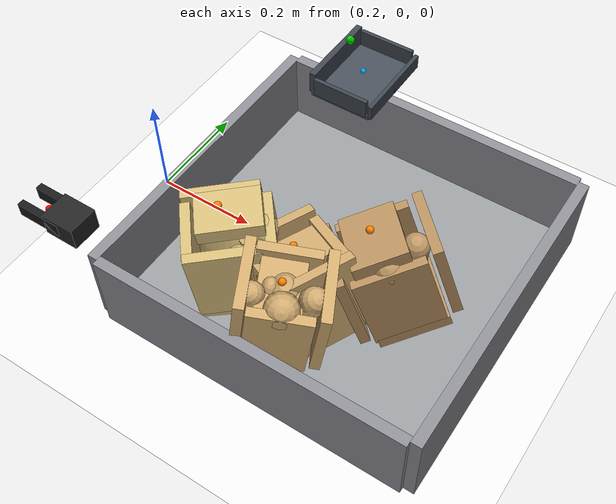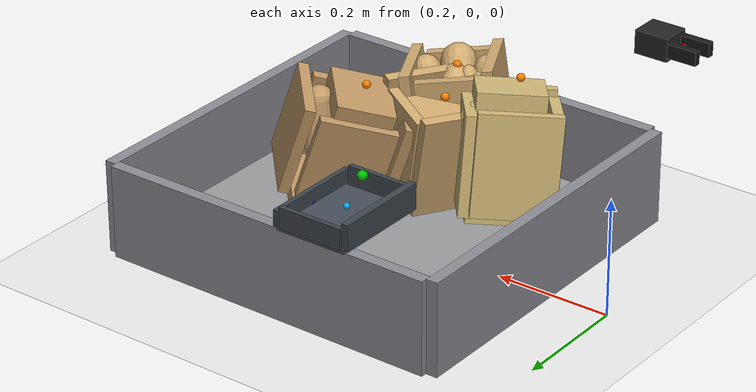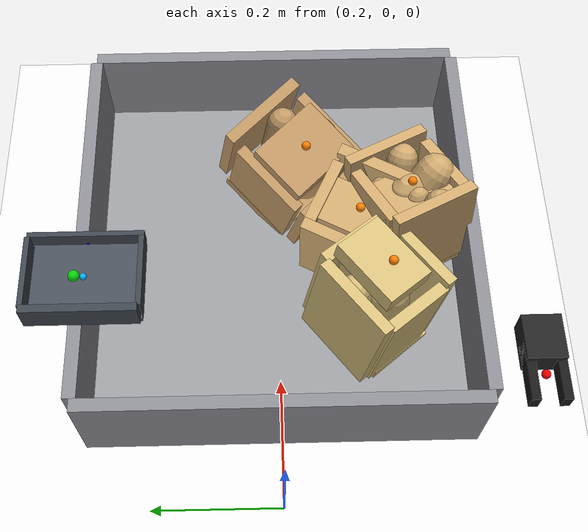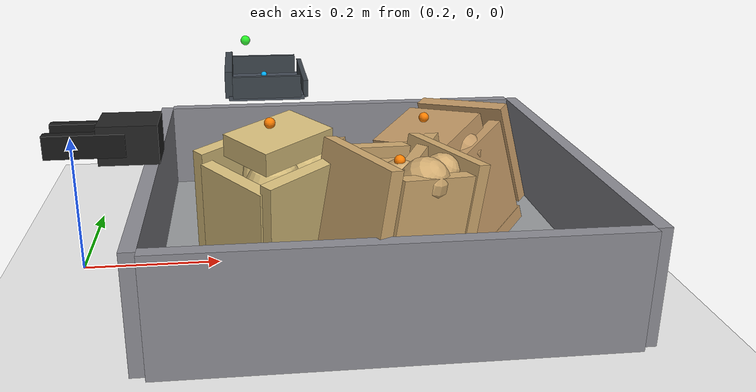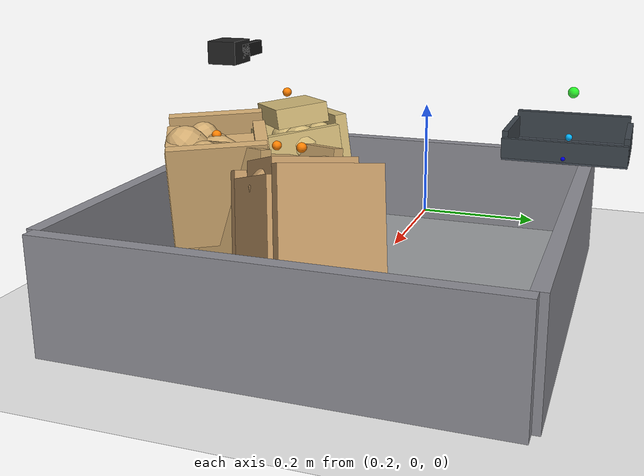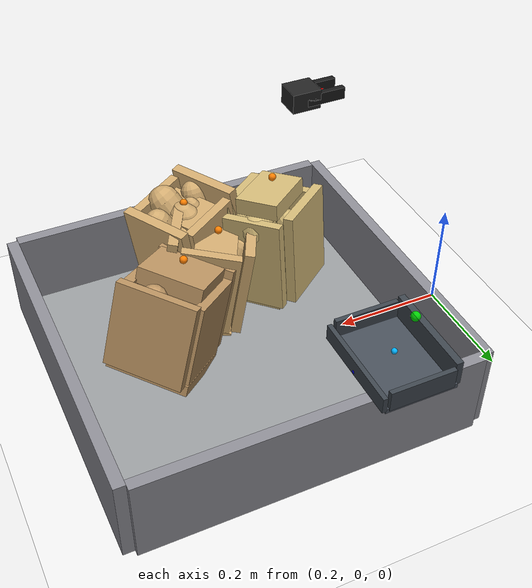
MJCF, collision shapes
<mujoco model="low_fill_top_collapsed_side_exposed_ep0_try0">
  <compiler angle="radian" coordinate="local" inertiafromgeom="true" meshdir="D:/Michael/2025/01.Research/01.Parceldetection/16.Pybullet/bullet3-master (1)/bullet3-master/examples/pybullet/examples/DeformableTest/Sackcodex2/object"/>
  <option timestep="0.002" gravity="0 0 -9.81" integrator="implicitfast" iterations="100" tolerance="1e-8"/>
  <size memory="768M" nconmax="12000"/>

  <visual>
    <global azimuth="128" elevation="-20"/>
    <headlight ambient="0.34 0.34 0.34" diffuse="0.78 0.78 0.78" specular="0.15 0.15 0.15"/>
    <rgba haze="0.11 0.13 0.18 1"/>
  </visual>

  <default>
    <geom condim="4" friction="1.15 0.03 0.01" margin="0.003" solimp="0.93 0.98 0.003" solref="0.012 1"/>
    <joint damping="1.2" armature="0.002"/>
    <position kp="2500" forcelimited="true" forcerange="-420 420"/>
    <motor ctrllimited="true"/>
  </default>

  <asset>
    <mesh name="sack_0_visual_mesh" file="sack.obj" scale="0.0729 0.0729 0.0746"/>
    <mesh name="sack_1_visual_mesh" file="sack3.obj" scale="0.0765 0.0765 0.0820"/>
    <mesh name="sack_2_visual_mesh" file="sack8.obj" scale="0.0745 0.0745 0.0806"/>
    <mesh name="sack_3_visual_mesh" file="sack10.obj" scale="0.0701 0.0701 0.0724"/>
  </asset>

  <worldbody>
    <light name="key" pos="0.85 0.15 1.8" dir="-0.2 -0.1 -1" directional="true"/>
    <geom name="floor" type="plane" size="2 2 0.1" rgba="0.93 0.93 0.93 1"/>
    <geom name="work_pad" type="box" pos="0.62 0 0.012" size="0.30 0.30 0.012" rgba="0.60 0.61 0.62 1" friction="1.4 0.05 0.01"/>
    <geom name="corral_front" type="box" pos="0.93 0.00 0.08" size="0.010 0.30 0.08" rgba="0.55 0.55 0.58 0.22" friction="1.0 0.03 0.01"/>
    <geom name="corral_back" type="box" pos="0.31 0.00 0.08" size="0.010 0.30 0.08" rgba="0.55 0.55 0.58 0.18" friction="1.0 0.03 0.01"/>
    <geom name="corral_left" type="box" pos="0.62 0.30 0.08" size="0.30 0.010 0.08" rgba="0.55 0.55 0.58 0.14" friction="1.0 0.03 0.01"/>
    <geom name="corral_right" type="box" pos="0.62 -0.30 0.08" size="0.30 0.010 0.08" rgba="0.55 0.55 0.58 0.14" friction="1.0 0.03 0.01"/>
    <camera name="overview" pos="1.22 0.00 0.92" xyaxes="0 1 0 -0.46 0 0.88"/>

    <body name="gripper_mocap" mocap="true" pos="0.36 -0.33 0.30" quat="0.707107 0 -0.707107 0"/>
    <body name="scoop_mocap" mocap="true" pos="0.42 0.28 0.20" quat="1 0 0 0"/>

    <body name="gripper_ctrl_base" pos="0.36 -0.33 0.30">
      <inertial pos="0 0 0" mass="0.001" diaginertia="1e-6 1e-6 1e-6"/>
      <joint name="gripper_ctrl_x" type="slide" axis="1 0 0" limited="true" range="0.20 1.00"/>
      <body name="gripper_ctrl_y_body">
        <inertial pos="0 0 0" mass="0.001" diaginertia="1e-6 1e-6 1e-6"/>
        <joint name="gripper_ctrl_y" type="slide" axis="0 1 0" limited="true" range="-0.60 0.60"/>
        <body name="gripper_ctrl_z_body">
          <inertial pos="0 0 0" mass="0.001" diaginertia="1e-6 1e-6 1e-6"/>
          <joint name="gripper_ctrl_z" type="slide" axis="0 0 1" limited="true" range="0.04 0.70"/>
          <body name="gripper_ctrl_yaw_body">
            <inertial pos="0 0 0" mass="0.001" diaginertia="1e-6 1e-6 1e-6"/>
            <joint name="gripper_ctrl_yaw" type="hinge" axis="0 0 1" limited="true" range="-3.1416 3.1416"/>
            <body name="gripper_ctrl_pitch_body">
              <inertial pos="0 0 0" mass="0.001" diaginertia="1e-6 1e-6 1e-6"/>
              <joint name="gripper_ctrl_pitch" type="hinge" axis="0 1 0" limited="true" range="-3.1416 3.1416"/>
              <body name="gripper_ctrl_roll_body">
                <inertial pos="0 0 0" mass="0.001" diaginertia="1e-6 1e-6 1e-6"/>
                <joint name="gripper_ctrl_roll" type="hinge" axis="1 0 0" limited="true" range="-3.1416 3.1416"/>
              </body>
            </body>
          </body>
        </body>
      </body>
    </body>

    <body name="scoop_ctrl_base" pos="0.42 0.28 0.20">
      <inertial pos="0 0 0" mass="0.001" diaginertia="1e-6 1e-6 1e-6"/>
      <joint name="scoop_ctrl_x" type="slide" axis="1 0 0" limited="true" range="0.20 1.00"/>
      <body name="scoop_ctrl_y_body">
        <inertial pos="0 0 0" mass="0.001" diaginertia="1e-6 1e-6 1e-6"/>
        <joint name="scoop_ctrl_y" type="slide" axis="0 1 0" limited="true" range="-0.60 0.60"/>
        <body name="scoop_ctrl_z_body">
          <inertial pos="0 0 0" mass="0.001" diaginertia="1e-6 1e-6 1e-6"/>
          <joint name="scoop_ctrl_z" type="slide" axis="0 0 1" limited="true" range="0.04 0.70"/>
          <body name="scoop_ctrl_yaw_body">
            <inertial pos="0 0 0" mass="0.001" diaginertia="1e-6 1e-6 1e-6"/>
            <joint name="scoop_ctrl_yaw" type="hinge" axis="0 0 1" limited="true" range="-3.1416 3.1416"/>
            <body name="scoop_ctrl_pitch_body">
              <inertial pos="0 0 0" mass="0.001" diaginertia="1e-6 1e-6 1e-6"/>
              <joint name="scoop_ctrl_pitch" type="hinge" axis="0 1 0" limited="true" range="-3.1416 3.1416"/>
              <body name="scoop_ctrl_roll_body">
                <inertial pos="0 0 0" mass="0.001" diaginertia="1e-6 1e-6 1e-6"/>
                <joint name="scoop_ctrl_roll" type="hinge" axis="1 0 0" limited="true" range="-3.1416 3.1416"/>
              </body>
            </body>
          </body>
        </body>
      </body>
    </body>

    <body name="gripper_tool" pos="0.36 -0.33 0.30" quat="0.707107 0 -0.707107 0">
      <freejoint name="gripper_tool_free"/>
      <inertial pos="0 0 0.04" mass="0.08" diaginertia="0.0002 0.0002 0.0002"/>
      <geom name="gripper_palm" type="box" pos="0 0 0.030" size="0.020 0.026 0.030" rgba="0.14 0.14 0.14 1"/>
      <body name="left_finger_body" pos="0 0 0.072">
        <joint name="left_finger_slide" type="slide" axis="0 1 0" limited="true" range="0.010 0.040" damping="12"/>
        <geom name="left_finger_geom" type="box" pos="0 0.020 0" size="0.012 0.006 0.040" rgba="0.10 0.10 0.10 1" friction="2.2 0.05 0.01"/>
      </body>
      <body name="right_finger_body" pos="0 0 0.072">
        <joint name="right_finger_slide" type="slide" axis="0 -1 0" limited="true" range="0.010 0.040" damping="12"/>
        <geom name="right_finger_geom" type="box" pos="0 -0.020 0" size="0.012 0.006 0.040" rgba="0.10 0.10 0.10 1" friction="2.2 0.05 0.01"/>
      </body>
      <site name="gripper_pinch_site" pos="0 0 0.074" size="0.006" rgba="1 0 0 1"/>
    </body>

    <body name="scoop_tool" pos="0.42 0.28 0.20" quat="1 0 0 0">
      <freejoint name="scoop_tool_free"/>
      <inertial pos="0 0 0.02" mass="0.10" diaginertia="0.0003 0.0003 0.0003"/>
      <geom name="scoop_plate" type="box" pos="0.062 0 0" size="0.062 0.085 0.004" rgba="0.28 0.31 0.35 1" friction="1.7 0.05 0.01"/>
      <geom name="scoop_lip" type="box" pos="0.126 0 0.014" size="0.004 0.085 0.014" rgba="0.24 0.27 0.30 1" friction="1.7 0.05 0.01"/>
      <geom name="scoop_left_rail" type="box" pos="0.062 0.082 0.018" size="0.056 0.004 0.018" rgba="0.24 0.27 0.30 1"/>
      <geom name="scoop_right_rail" type="box" pos="0.062 -0.082 0.018" size="0.056 0.004 0.018" rgba="0.24 0.27 0.30 1"/>
      <geom name="scoop_backstop" type="box" pos="0.000 0 0.022" size="0.006 0.082 0.022" rgba="0.24 0.27 0.30 1"/>
      <site name="scoop_tip_site" pos="0.126 0 0.005" size="0.005" rgba="0 0 1 1"/>
      <site name="scoop_center_site" pos="0.060 0 0.020" size="0.005" rgba="0 0.7 1 1"/>
      <site name="score_overlay_site" pos="0.030 0 0.080" size="0.008" rgba="0 1 0 0.8"/>
    </body>

    <body name="sack_0" pos="0.6172 -0.1280 0.1110" euler="-0.0194 -0.1628 -2.0436">
      <freejoint name="sack_0_free"/>

      <geom name="sack_0_visual" type="mesh" mesh="sack_0_visual_mesh" rgba="0.820 0.670 0.440 0.92" contype="0" conaffinity="0"/>
      <site name="sack_0_center_site" pos="0 0 0.000" size="0.006" rgba="0 1 0 1"/>
      <site name="sack_0_top_site" pos="0 -0.0060 0.0951" size="0.007" rgba="1 0.5 0 1"/>
      <site name="sack_0_side_site" pos="0.0000 -0.0476 0.018" size="0.007" rgba="1 0.8 0 1"/>

      <geom name="sack_0_core_geom" type="ellipsoid" pos="0 0 0.0055" size="0.0450 0.0348 0.0666" mass="0.6235" rgba="0.820 0.670 0.440 0.12" friction="1.0 0.03 0.01"/>
      <geom name="sack_0_core_front" type="capsule" fromto="-0.0200 0 -0.0200 0.0450 0 0.0600" size="0.0294" mass="0.1484" rgba="0.820 0.670 0.440 0.10"/>
      <geom name="sack_0_core_left" type="capsule" fromto="-0.008 0.0315 -0.010 0.018 0.0495 0.060" size="0.0241" mass="0.2672" rgba="0.820 0.670 0.440 0.10"/>
      <geom name="sack_0_core_right" type="capsule" fromto="-0.006 -0.0315 -0.008 0.020 -0.0515 0.054" size="0.0221" mass="0.2672" rgba="0.820 0.670 0.440 0.10"/>

      <body name="sack_0_bottom_support_proxy_body" pos="0 -0.0042 -0.0895">
        <joint name="sack_0_bottom_x" type="slide" axis="1 0 0" limited="true" range="-0.012 0.012" damping="18" stiffness="443.3"/>
        <joint name="sack_0_bottom_y" type="slide" axis="0 1 0" limited="true" range="-0.012 0.012" damping="18" stiffness="443.3"/>
        <joint name="sack_0_bottom_z" type="slide" axis="0 0 1" limited="true" range="-0.008 0.020" damping="24" stiffness="546.3"/>
        <geom name="sack_0_bottom_support_proxy" type="box" size="0.0724 0.0536 0.0100" mass="0.1188" rgba="0.820 0.670 0.440 0.34" friction="1.55 0.05 0.01"/>
      </body>

      <body name="sack_0_top_grasp_proxy_body" pos="0.0000 -0.0060 0.0651">
        <joint name="sack_0_top_x" type="slide" axis="1 0 0" limited="true" range="-0.018 0.018" damping="12" stiffness="170.2"/>
        <joint name="sack_0_top_y" type="slide" axis="0 1 0" limited="true" range="-0.018 0.018" damping="12" stiffness="170.2"/>
        <joint name="sack_0_top_z" type="slide" axis="0 0 1" limited="true" range="-0.040 0.010" damping="14" stiffness="124.4"/>
        <geom name="sack_0_top_grasp_proxy" type="box" size="0.0564 0.0376 0.0150" mass="0.0891" rgba="0.820 0.670 0.440 0.26" friction="2.2 0.05 0.01"/>
      </body>

      <body name="sack_0_left_side_proxy_body" pos="0 0.0691 0.010">
        <joint name="sack_0_left_side_slide" type="slide" axis="0 -1 0" limited="true" range="-0.028 0.016" damping="16" stiffness="217.3"/>
        <geom name="sack_0_left_side_proxy" type="box" size="0.0684 0.0090 0.0875" mass="0.0891" rgba="0.820 0.670 0.440 0.24"/>
      </body>

      <body name="sack_0_right_side_proxy_body" pos="0 -0.0651 0.010">
        <joint name="sack_0_right_side_slide" type="slide" axis="0 1 0" limited="true" range="-0.028 0.016" damping="16" stiffness="201.6"/>
        <geom name="sack_0_right_side_proxy" type="box" size="0.0684 0.0090 0.0875" mass="0.0891" rgba="0.820 0.670 0.440 0.24"/>
      </body>

      <body name="sack_0_front_proxy_body" pos="0.0624 0 0.000">
        <joint name="sack_0_front_slide" type="slide" axis="-1 0 0" limited="true" range="-0.022 0.012" damping="15" stiffness="211.7"/>
        <geom name="sack_0_front_support_proxy" type="box" size="0.0090 0.0536 0.0855" mass="0.0742" rgba="0.820 0.670 0.440 0.22"/>
      </body>

      <body name="sack_0_back_proxy_body" pos="-0.0624 0 0.000">
        <joint name="sack_0_back_slide" type="slide" axis="1 0 0" limited="true" range="-0.022 0.012" damping="15" stiffness="195.9"/>
        <geom name="sack_0_back_support_proxy" type="box" size="0.0090 0.0536 0.0855" mass="0.0742" rgba="0.820 0.670 0.440 0.22"/>
      </body>

      <body name="sack_0_shape_proxy_body" pos="0.0000 -0.0235 0.0456">
        <joint name="sack_0_bulge_y" type="slide" axis="0 1 0" limited="true" range="-0.020 0.020" damping="8" stiffness="111.1"/>
        <joint name="sack_0_bulge_z" type="slide" axis="0 0 1" limited="true" range="-0.014 0.028" damping="8" stiffness="108.3"/>
        <geom name="sack_0_shape_proxy" type="ellipsoid" size="0.0201 0.0162 0.0264" mass="0.0594" rgba="0.820 0.670 0.440 0.28"/>
      </body>
    </body>

    <body name="sack_1" pos="0.7292 -0.0272 0.1213" euler="0.1234 -0.2846 -0.7848">
      <freejoint name="sack_1_free"/>

      <geom name="sack_1_visual" type="mesh" mesh="sack_1_visual_mesh" rgba="0.760 0.600 0.400 0.92" contype="0" conaffinity="0"/>
      <site name="sack_1_center_site" pos="0 0 0.000" size="0.006" rgba="0 1 0 1"/>
      <site name="sack_1_top_site" pos="0 -0.0060 0.1146" size="0.007" rgba="1 0.5 0 1"/>
      <site name="sack_1_side_site" pos="0.0000 -0.0587 0.018" size="0.007" rgba="1 0.8 0 1"/>

      <geom name="sack_1_core_geom" type="ellipsoid" pos="0 0 0.0058" size="0.0452 0.0356 0.0797" mass="0.8257" rgba="0.760 0.600 0.400 0.12" friction="1.0 0.03 0.01"/>
      <geom name="sack_1_core_front" type="capsule" fromto="-0.0200 0 -0.0200 0.0450 0 0.0600" size="0.0310" mass="0.1966" rgba="0.760 0.600 0.400 0.10"/>
      <geom name="sack_1_core_left" type="capsule" fromto="-0.008 0.0361 -0.010 0.018 0.0541 0.060" size="0.0242" mass="0.3539" rgba="0.760 0.600 0.400 0.10"/>
      <geom name="sack_1_core_right" type="capsule" fromto="-0.006 -0.0361 -0.008 0.020 -0.0561 0.054" size="0.0222" mass="0.3539" rgba="0.760 0.600 0.400 0.10"/>

      <body name="sack_1_bottom_support_proxy_body" pos="0 0.0044 -0.0804">
        <joint name="sack_1_bottom_x" type="slide" axis="1 0 0" limited="true" range="-0.012 0.012" damping="18" stiffness="490.9"/>
        <joint name="sack_1_bottom_y" type="slide" axis="0 1 0" limited="true" range="-0.012 0.012" damping="18" stiffness="490.9"/>
        <joint name="sack_1_bottom_z" type="slide" axis="0 0 1" limited="true" range="-0.008 0.020" damping="24" stiffness="604.5"/>
        <geom name="sack_1_bottom_support_proxy" type="box" size="0.0760 0.0647 0.0100" mass="0.1573" rgba="0.760 0.600 0.400 0.34" friction="1.55 0.05 0.01"/>
      </body>

      <body name="sack_1_top_grasp_proxy_body" pos="0.0000 -0.0060 0.0846">
        <joint name="sack_1_top_x" type="slide" axis="1 0 0" limited="true" range="-0.018 0.018" damping="12" stiffness="188.7"/>
        <joint name="sack_1_top_y" type="slide" axis="0 1 0" limited="true" range="-0.018 0.018" damping="12" stiffness="188.7"/>
        <joint name="sack_1_top_z" type="slide" axis="0 0 1" limited="true" range="-0.040 0.010" damping="14" stiffness="140.3"/>
        <geom name="sack_1_top_grasp_proxy" type="box" size="0.0600 0.0487 0.0150" mass="0.1180" rgba="0.760 0.600 0.400 0.26" friction="2.2 0.05 0.01"/>
      </body>

      <body name="sack_1_left_side_proxy_body" pos="0 0.0847 0.010">
        <joint name="sack_1_left_side_slide" type="slide" axis="0 -1 0" limited="true" range="-0.028 0.016" damping="16" stiffness="250.0"/>
        <geom name="sack_1_left_side_proxy" type="box" size="0.0720 0.0090 0.0784" mass="0.1180" rgba="0.760 0.600 0.400 0.24"/>
      </body>

      <body name="sack_1_right_side_proxy_body" pos="0 -0.0807 0.010">
        <joint name="sack_1_right_side_slide" type="slide" axis="0 1 0" limited="true" range="-0.028 0.016" damping="16" stiffness="231.7"/>
        <geom name="sack_1_right_side_proxy" type="box" size="0.0720 0.0090 0.0784" mass="0.1180" rgba="0.760 0.600 0.400 0.24"/>
      </body>

      <body name="sack_1_front_proxy_body" pos="0.0660 0 0.000">
        <joint name="sack_1_front_slide" type="slide" axis="-1 0 0" limited="true" range="-0.022 0.012" damping="15" stiffness="235.5"/>
        <geom name="sack_1_front_support_proxy" type="box" size="0.0090 0.0647 0.0764" mass="0.0983" rgba="0.760 0.600 0.400 0.22"/>
      </body>

      <body name="sack_1_back_proxy_body" pos="-0.0660 0 0.000">
        <joint name="sack_1_back_slide" type="slide" axis="1 0 0" limited="true" range="-0.022 0.012" damping="15" stiffness="217.1"/>
        <geom name="sack_1_back_support_proxy" type="box" size="0.0090 0.0647 0.0764" mass="0.0983" rgba="0.760 0.600 0.400 0.22"/>
      </body>

      <body name="sack_1_shape_proxy_body" pos="0.0000 -0.0281 0.0297">
        <joint name="sack_1_bulge_y" type="slide" axis="0 1 0" limited="true" range="-0.020 0.020" damping="8" stiffness="79.4"/>
        <joint name="sack_1_bulge_z" type="slide" axis="0 0 1" limited="true" range="-0.014 0.028" damping="8" stiffness="84.5"/>
        <geom name="sack_1_shape_proxy" type="ellipsoid" size="0.0202 0.0163 0.0261" mass="0.0786" rgba="0.760 0.600 0.400 0.28"/>
      </body>
    </body>

    <body name="sack_2" pos="0.4783 -0.1446 0.1244" euler="0.1291 0.0033 0.6855">
      <freejoint name="sack_2_free"/>

      <geom name="sack_2_visual" type="mesh" mesh="sack_2_visual_mesh" rgba="0.840 0.740 0.480 0.92" contype="0" conaffinity="0"/>
      <site name="sack_2_center_site" pos="0 0 0.000" size="0.006" rgba="0 1 0 1"/>
      <site name="sack_2_top_site" pos="0 0.0060 0.1366" size="0.007" rgba="1 0.5 0 1"/>
      <site name="sack_2_side_site" pos="0.0140 0.0501 0.018" size="0.007" rgba="1 0.8 0 1"/>

      <geom name="sack_2_core_geom" type="ellipsoid" pos="0 0 0.0060" size="0.0505 0.0424 0.0899" mass="1.0672" rgba="0.840 0.740 0.480 0.12" friction="1.0 0.03 0.01"/>
      <geom name="sack_2_core_front" type="capsule" fromto="-0.0060 0 -0.0200 0.0590 0 0.0600" size="0.0314" mass="0.2541" rgba="0.840 0.740 0.480 0.10"/>
      <geom name="sack_2_core_left" type="capsule" fromto="-0.008 0.0259 -0.010 0.018 0.0439 0.060" size="0.0241" mass="0.4574" rgba="0.840 0.740 0.480 0.10"/>
      <geom name="sack_2_core_right" type="capsule" fromto="-0.006 -0.0259 -0.008 0.020 -0.0459 0.054" size="0.0221" mass="0.4574" rgba="0.840 0.740 0.480 0.10"/>

      <body name="sack_2_bottom_support_proxy_body" pos="0 -0.0128 -0.0897">
        <joint name="sack_2_bottom_x" type="slide" axis="1 0 0" limited="true" range="-0.012 0.012" damping="18" stiffness="501.9"/>
        <joint name="sack_2_bottom_y" type="slide" axis="0 1 0" limited="true" range="-0.012 0.012" damping="18" stiffness="501.9"/>
        <joint name="sack_2_bottom_z" type="slide" axis="0 0 1" limited="true" range="-0.008 0.020" damping="24" stiffness="617.9"/>
        <geom name="sack_2_bottom_support_proxy" type="box" size="0.0722 0.0561 0.0100" mass="0.2033" rgba="0.840 0.740 0.480 0.34" friction="1.55 0.05 0.01"/>
      </body>

      <body name="sack_2_top_grasp_proxy_body" pos="0.0140 0.0060 0.1066">
        <joint name="sack_2_top_x" type="slide" axis="1 0 0" limited="true" range="-0.018 0.018" damping="12" stiffness="193.0"/>
        <joint name="sack_2_top_y" type="slide" axis="0 1 0" limited="true" range="-0.018 0.018" damping="12" stiffness="193.0"/>
        <joint name="sack_2_top_z" type="slide" axis="0 0 1" limited="true" range="-0.040 0.010" damping="14" stiffness="144.0"/>
        <geom name="sack_2_top_grasp_proxy" type="box" size="0.0562 0.0401 0.0150" mass="0.1525" rgba="0.840 0.740 0.480 0.26" friction="2.2 0.05 0.01"/>
      </body>

      <body name="sack_2_left_side_proxy_body" pos="0 0.0660 0.010">
        <joint name="sack_2_left_side_slide" type="slide" axis="0 -1 0" limited="true" range="-0.028 0.016" damping="16" stiffness="257.9"/>
        <geom name="sack_2_left_side_proxy" type="box" size="0.0682 0.0090 0.0877" mass="0.1525" rgba="0.840 0.740 0.480 0.24"/>
      </body>

      <body name="sack_2_right_side_proxy_body" pos="0 -0.0620 0.010">
        <joint name="sack_2_right_side_slide" type="slide" axis="0 1 0" limited="true" range="-0.028 0.016" damping="16" stiffness="238.9"/>
        <geom name="sack_2_right_side_proxy" type="box" size="0.0682 0.0090 0.0877" mass="0.1525" rgba="0.840 0.740 0.480 0.24"/>
      </body>

      <body name="sack_2_front_proxy_body" pos="0.0762 0 0.000">
        <joint name="sack_2_front_slide" type="slide" axis="-1 0 0" limited="true" range="-0.022 0.012" damping="15" stiffness="241.0"/>
        <geom name="sack_2_front_support_proxy" type="box" size="0.0090 0.0561 0.0857" mass="0.1271" rgba="0.840 0.740 0.480 0.22"/>
      </body>

      <body name="sack_2_back_proxy_body" pos="-0.0622 0 0.000">
        <joint name="sack_2_back_slide" type="slide" axis="1 0 0" limited="true" range="-0.022 0.012" damping="15" stiffness="222.0"/>
        <geom name="sack_2_back_support_proxy" type="box" size="0.0090 0.0561 0.0857" mass="0.1271" rgba="0.840 0.740 0.480 0.22"/>
      </body>

      <body name="sack_2_shape_proxy_body" pos="0.0084 0.0179 0.0260">
        <joint name="sack_2_bulge_y" type="slide" axis="0 1 0" limited="true" range="-0.020 0.020" damping="8" stiffness="72.1"/>
        <joint name="sack_2_bulge_z" type="slide" axis="0 0 1" limited="true" range="-0.014 0.028" damping="8" stiffness="79.0"/>
        <geom name="sack_2_shape_proxy" type="ellipsoid" size="0.0201 0.0161 0.0260" mass="0.1016" rgba="0.840 0.740 0.480 0.28"/>
      </body>
    </body>

    <body name="sack_3" pos="0.6254 -0.2022 0.1495" euler="-0.0336 0.1425 -1.0885">
      <freejoint name="sack_3_free"/>

      <geom name="sack_3_visual" type="mesh" mesh="sack_3_visual_mesh" rgba="0.820 0.670 0.440 0.92" contype="0" conaffinity="0"/>
      <site name="sack_3_center_site" pos="0 0 0.000" size="0.006" rgba="0 1 0 1"/>
      <site name="sack_3_top_site" pos="0 -0.0060 0.0717" size="0.007" rgba="1 0.5 0 1"/>
      <site name="sack_3_side_site" pos="0.0000 -0.0484 0.018" size="0.007" rgba="1 0.8 0 1"/>

      <geom name="sack_3_core_geom" type="ellipsoid" pos="0 0 0.0055" size="0.0452 0.0352 0.0672" mass="0.6721" rgba="0.820 0.670 0.440 0.12" friction="1.0 0.03 0.01"/>
      <geom name="sack_3_core_front" type="capsule" fromto="-0.0200 0 -0.0200 0.0450 0 0.0600" size="0.0298" mass="0.1600" rgba="0.820 0.670 0.440 0.10"/>
      <geom name="sack_3_core_left" type="capsule" fromto="-0.008 0.0309 -0.010 0.018 0.0489 0.060" size="0.0241" mass="0.2880" rgba="0.820 0.670 0.440 0.10"/>
      <geom name="sack_3_core_right" type="capsule" fromto="-0.006 -0.0309 -0.008 0.020 -0.0509 0.054" size="0.0221" mass="0.2880" rgba="0.820 0.670 0.440 0.10"/>

      <body name="sack_3_bottom_support_proxy_body" pos="0 -0.0124 -0.0761">
        <joint name="sack_3_bottom_x" type="slide" axis="1 0 0" limited="true" range="-0.012 0.012" damping="18" stiffness="452.8"/>
        <joint name="sack_3_bottom_y" type="slide" axis="0 1 0" limited="true" range="-0.012 0.012" damping="18" stiffness="452.8"/>
        <joint name="sack_3_bottom_z" type="slide" axis="0 0 1" limited="true" range="-0.008 0.020" damping="24" stiffness="557.9"/>
        <geom name="sack_3_bottom_support_proxy" type="box" size="0.0727 0.0544 0.0100" mass="0.1280" rgba="0.820 0.670 0.440 0.34" friction="1.55 0.05 0.01"/>
      </body>

      <body name="sack_3_top_grasp_proxy_body" pos="0.0000 -0.0060 0.0417">
        <joint name="sack_3_top_x" type="slide" axis="1 0 0" limited="true" range="-0.018 0.018" damping="12" stiffness="173.9"/>
        <joint name="sack_3_top_y" type="slide" axis="0 1 0" limited="true" range="-0.018 0.018" damping="12" stiffness="173.9"/>
        <joint name="sack_3_top_z" type="slide" axis="0 0 1" limited="true" range="-0.040 0.010" damping="14" stiffness="127.6"/>
        <geom name="sack_3_top_grasp_proxy" type="box" size="0.0567 0.0384 0.0150" mass="0.0960" rgba="0.820 0.670 0.440 0.26" friction="2.2 0.05 0.01"/>
      </body>

      <body name="sack_3_left_side_proxy_body" pos="0 0.0693 0.010">
        <joint name="sack_3_left_side_slide" type="slide" axis="0 -1 0" limited="true" range="-0.028 0.016" damping="16" stiffness="223.7"/>
        <geom name="sack_3_left_side_proxy" type="box" size="0.0687 0.0090 0.0741" mass="0.0960" rgba="0.820 0.670 0.440 0.24"/>
      </body>

      <body name="sack_3_right_side_proxy_body" pos="0 -0.0653 0.010">
        <joint name="sack_3_right_side_slide" type="slide" axis="0 1 0" limited="true" range="-0.028 0.016" damping="16" stiffness="207.5"/>
        <geom name="sack_3_right_side_proxy" type="box" size="0.0687 0.0090 0.0741" mass="0.0960" rgba="0.820 0.670 0.440 0.24"/>
      </body>

      <body name="sack_3_front_proxy_body" pos="0.0627 0 0.000">
        <joint name="sack_3_front_slide" type="slide" axis="-1 0 0" limited="true" range="-0.022 0.012" damping="15" stiffness="216.4"/>
        <geom name="sack_3_front_support_proxy" type="box" size="0.0090 0.0544 0.0721" mass="0.0800" rgba="0.820 0.670 0.440 0.22"/>
      </body>

      <body name="sack_3_back_proxy_body" pos="-0.0627 0 0.000">
        <joint name="sack_3_back_slide" type="slide" axis="1 0 0" limited="true" range="-0.022 0.012" damping="15" stiffness="200.1"/>
        <geom name="sack_3_back_support_proxy" type="box" size="0.0090 0.0544 0.0721" mass="0.0800" rgba="0.820 0.670 0.440 0.22"/>
      </body>

      <body name="sack_3_shape_proxy_body" pos="0.0000 -0.0229 0.0424">
        <joint name="sack_3_bulge_y" type="slide" axis="0 1 0" limited="true" range="-0.020 0.020" damping="8" stiffness="104.8"/>
        <joint name="sack_3_bulge_z" type="slide" axis="0 0 1" limited="true" range="-0.014 0.028" damping="8" stiffness="103.6"/>
        <geom name="sack_3_shape_proxy" type="ellipsoid" size="0.0201 0.0162 0.0264" mass="0.0640" rgba="0.820 0.670 0.440 0.28"/>
      </body>
    </body>
  </worldbody>

  <equality>
    <weld name="gripper_follow" body1="gripper_mocap" body2="gripper_tool" torquescale="400" solref="0.002 1" solimp="0.99 0.999 0.0001"/>
    <weld name="scoop_follow" body1="scoop_mocap" body2="scoop_tool" torquescale="500" solref="0.002 1" solimp="0.99 0.999 0.0001"/>
  </equality>

  <actuator>
    <position name="gripper_ctrl_x_act" joint="gripper_ctrl_x" ctrlrange="0.20 1.00" kp="3500" forcerange="-300 300"/>
    <position name="gripper_ctrl_y_act" joint="gripper_ctrl_y" ctrlrange="-0.60 0.60" kp="3500" forcerange="-300 300"/>
    <position name="gripper_ctrl_z_act" joint="gripper_ctrl_z" ctrlrange="0.04 0.70" kp="3500" forcerange="-300 300"/>
    <position name="gripper_ctrl_yaw_act" joint="gripper_ctrl_yaw" ctrlrange="-3.1416 3.1416" kp="1800" forcerange="-250 250"/>
    <position name="gripper_ctrl_pitch_act" joint="gripper_ctrl_pitch" ctrlrange="-3.1416 3.1416" kp="1800" forcerange="-250 250"/>
    <position name="gripper_ctrl_roll_act" joint="gripper_ctrl_roll" ctrlrange="-3.1416 3.1416" kp="1800" forcerange="-250 250"/>
    <position name="scoop_ctrl_x_act" joint="scoop_ctrl_x" ctrlrange="0.20 1.00" kp="3500" forcerange="-300 300"/>
    <position name="scoop_ctrl_y_act" joint="scoop_ctrl_y" ctrlrange="-0.60 0.60" kp="3500" forcerange="-300 300"/>
    <position name="scoop_ctrl_z_act" joint="scoop_ctrl_z" ctrlrange="0.04 0.70" kp="3500" forcerange="-300 300"/>
    <position name="scoop_ctrl_yaw_act" joint="scoop_ctrl_yaw" ctrlrange="-3.1416 3.1416" kp="1800" forcerange="-250 250"/>
    <position name="scoop_ctrl_pitch_act" joint="scoop_ctrl_pitch" ctrlrange="-3.1416 3.1416" kp="1800" forcerange="-250 250"/>
    <position name="scoop_ctrl_roll_act" joint="scoop_ctrl_roll" ctrlrange="-3.1416 3.1416" kp="1800" forcerange="-250 250"/>
    <position name="left_finger_act" joint="left_finger_slide" ctrlrange="0.010 0.040" kp="2800" forcerange="-220 220"/>
    <position name="right_finger_act" joint="right_finger_slide" ctrlrange="0.010 0.040" kp="2800" forcerange="-220 220"/>
  </actuator>

  <contact>
    <exclude body1="sack_0_top_grasp_proxy_body" body2="sack_0_left_side_proxy_body"/>
    <exclude body1="sack_0_top_grasp_proxy_body" body2="sack_0_right_side_proxy_body"/>
    <exclude body1="sack_1_top_grasp_proxy_body" body2="sack_1_left_side_proxy_body"/>
    <exclude body1="sack_1_top_grasp_proxy_body" body2="sack_1_right_side_proxy_body"/>
    <exclude body1="sack_2_top_grasp_proxy_body" body2="sack_2_left_side_proxy_body"/>
    <exclude body1="sack_2_top_grasp_proxy_body" body2="sack_2_right_side_proxy_body"/>
    <exclude body1="sack_3_top_grasp_proxy_body" body2="sack_3_left_side_proxy_body"/>
    <exclude body1="sack_3_top_grasp_proxy_body" body2="sack_3_right_side_proxy_body"/>
  </contact>
</mujoco>
